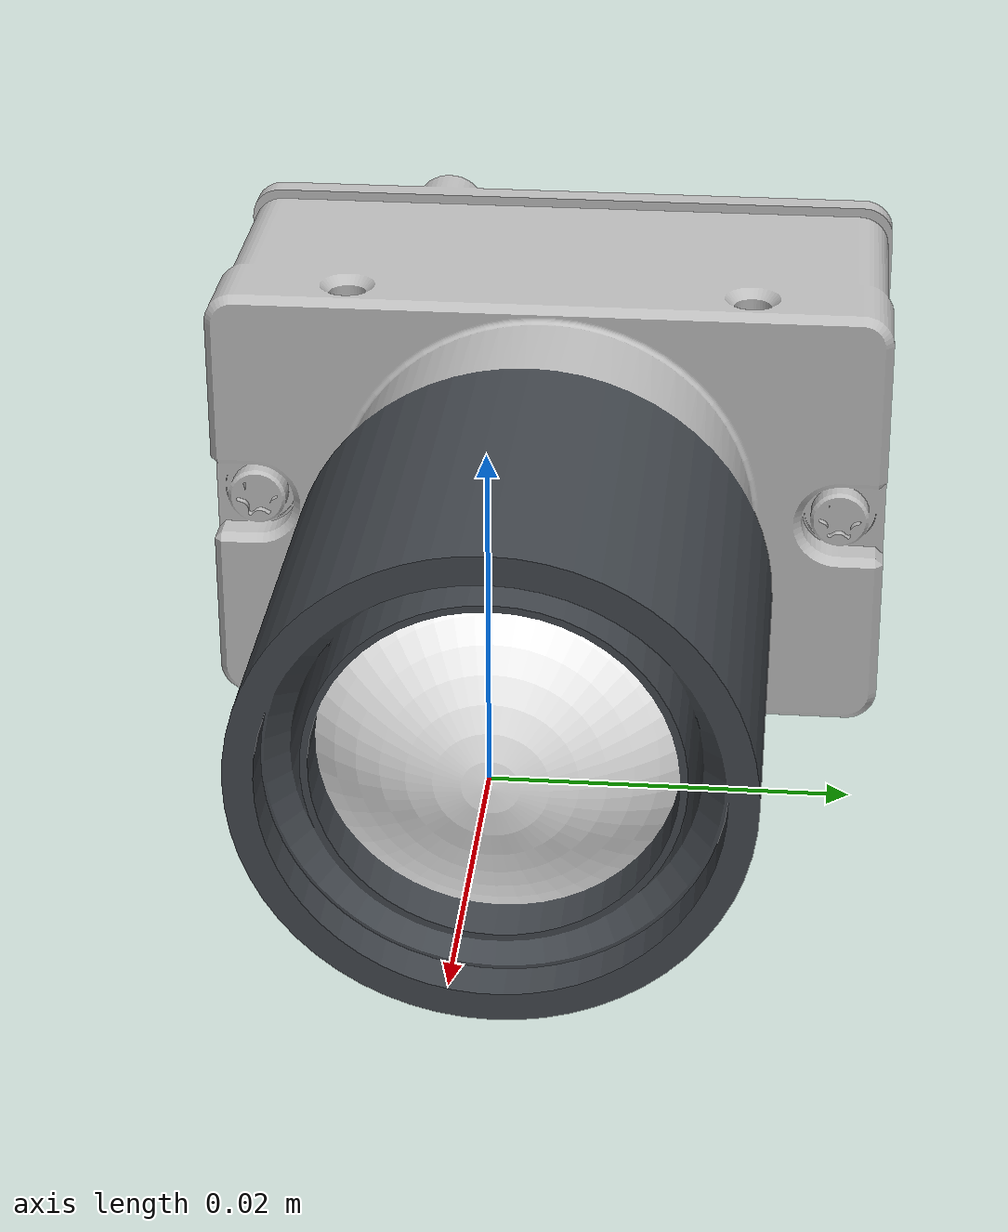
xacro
<?xml version="1.0" encoding="utf-8"?>
<robot xmlns:xacro="http://www.ros.org/wiki/xacro" name="camera">

    <link name="camera">
      <visual>
        <origin rpy="1.5701 0 1.5701" xyz="-0.04363353 0 0"/>
        <geometry>
          <mesh filename="package://manipulator_description/meshes/cam.dae"/>
        </geometry>
      </visual>
      <collision>
        <origin rpy="1.5701 0 1.5701" xyz="-0.04363353 0 0"/>
        <geometry>
          <mesh filename="package://manipulator_description/meshes/cam.stl"/>
        </geometry>
      </collision>
      <inertial>
        <origin rpy="1.5701 0 1.5701" xyz="-0.04363353 0 0"/>
        <mass value="0.12163455"/>
        <inertia ixx="2.11041984e-5" ixy="-9.60070950e-7" ixz="-9.64986145e-8" iyx="-9.60070950e-7" iyy="4.52382361e-5" iyz="-2.48143698e-8" izx="-9.64986145e-8" izy="-2.48143698e-8" izz="4.92072530e-5"/>
      </inertial>
    </link>
    <link name="virtual_camera">
    </link>
    <joint name ="virtual_camera" type="fixed">
        <origin rpy="-1.5701 0 -1.5701" xyz="0 0 0 "/>  <!--rpy="1.5701 3.1415 1.5701"-->
        <parent link="camera"/>
        <child link = "virtual_camera"/>
    </joint>

</robot>
